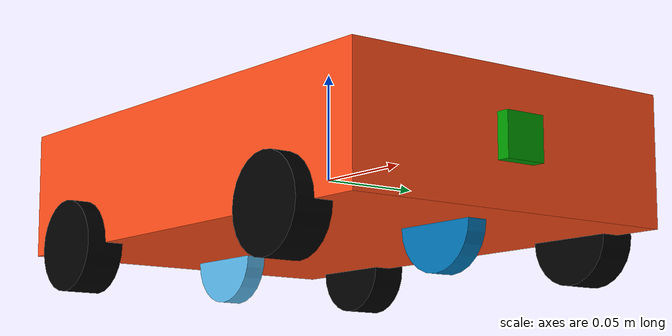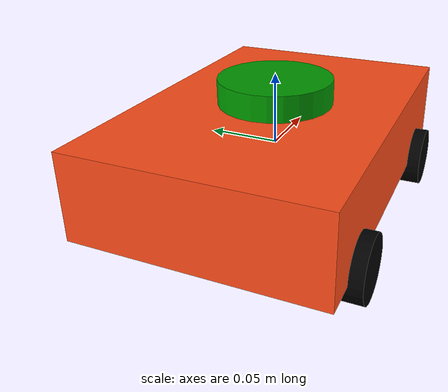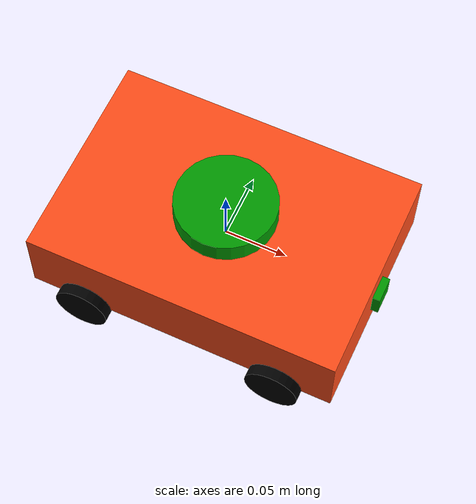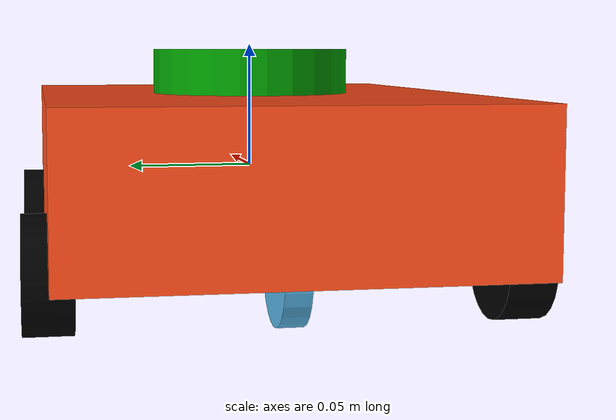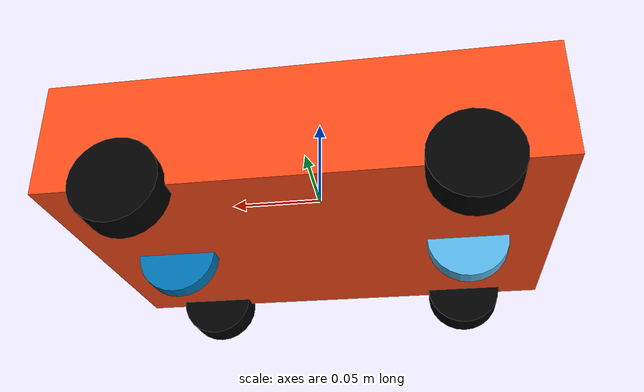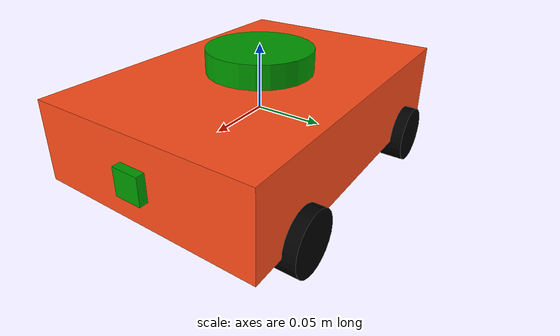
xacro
<?xml version="1.0"?>

<robot name="my_robot" xmlns:xacro="http://www.ros.org/wiki/xacro">

  <xacro:include filename="physical_robot_core.xacro" />

  <xacro:include filename="ros2_control_bic.xacro" />

  <xacro:include filename="lidar.xacro" />
  <xacro:include filename="depth_camera.xacro" />

</robot>

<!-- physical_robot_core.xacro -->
<robot xmlns:xacro="http://www.ros.org/wiki/xacro">

  <xacro:include filename="colors.xacro" />
  <xacro:include filename="inertial_macros.xacro" />

  <xacro:property name="PI" value="3.1415926535897931"/>
  <xacro:property name="base_mass" value="1" />
  <xacro:property name="base_width" value="0.17" />
  <xacro:property name="base_length" value="0.25" />
  <xacro:property name="base_height" value="0.06" />
  <xacro:property name="wheelbase" value="0.16" />
  <xacro:property name="wheel_mass" value="0.1" />
  <xacro:property name="wheel_len" value="0.018" />
  <xacro:property name="wheel_radius" value="0.0215" />

  <link name="base_link">
    <collision>
      <origin xyz="0 0 0" rpy="0 0 0"/>
      <geometry>
        <box size="${base_length} ${base_width} ${base_height}"/>
      </geometry>
    </collision>

    <visual>
      <origin xyz="0 0 0" rpy="0 0 0"/>
      <geometry>
        <box size="${base_length} ${base_width} ${base_height}"/>
      </geometry>
      <material name="orange"/>
    </visual>

    <inertial>
      <origin xyz="0 0 0" rpy="0 0 0"/>
      <mass value="${base_mass}"/>
        <inertia
          ixx="0.000270" ixy="0.0" ixz="0.0"
          iyy="0.000270" iyz="0.0"
          izz="0.000426"/>
      </inertial>
    </link>

    <!-- rear wheels -->

    <!-- virtual rear wheel -->

    <link name="virtual_rear_wheel">
      <visual>
        <origin xyz="0 0 0" rpy="${PI/2} 0 ${PI/2}"/>
        <geometry>
          <cylinder length="0.01" radius="${wheel_radius}"/>
        </geometry>
        <material name="invisible"/>
      </visual>
    </link>

    <joint name="virtual_rear_wheel_joint" type="continuous">
      <parent link="base_link"/>
      <child link="virtual_rear_wheel"/>
      <origin xyz="-${wheelbase/2} 0 -${base_height/2}" rpy="0 0 ${PI/2}"/>
      <axis xyz="1 0 0" rpy="0 0 0"/>
      <limit effort="100.0" velocity="100.0"/>
      <dynamics damping="0.2"/>
    </joint>

    <!-- rear right wheel -->

    <link name="rear_right_wheel">
      <collision>
        <origin xyz="0 0 0" rpy="${PI/2} 0 ${PI/2}"/>
        <geometry>
          <cylinder length="${wheel_len}" radius="${wheel_radius}"/>
        </geometry>
      </collision>

      <visual>
        <origin xyz="0 0 0" rpy="${PI/2} 0 ${PI/2}"/>
        <geometry>
          <cylinder length="${wheel_len}" radius="${wheel_radius}"/>
        </geometry>
        <material name="black"/>
      </visual>

      <inertial>
        <origin xyz="0 0 0" rpy="${PI/2} 0 ${PI/2}"/>
        <mass value="${wheel_mass}"/>
        <inertia
          ixx="0.000270" ixy="0.0" ixz="0.0"
          iyy="0.000270" iyz="0.0"
          izz="0.000426"/>
      </inertial>

    </link>

    <joint name="rear_right_wheel_joint" type="continuous">
      <parent link="base_link"/>
      <child link="rear_right_wheel"/>
      <origin xyz="-${wheelbase/2} ${base_width/2} -${base_height/2}" rpy="0 0 ${PI/2}"/>
      <axis xyz="1 0 0" rpy="0 0 0"/>
      <limit effort="100.0" velocity="100.0"/>
      <dynamics damping="0.2"/>
      <mimic joint="virtual_rear_wheel_joint" multiplier="1.0" offset="0.0"/>
    </joint>

    <!-- rear left wheel -->
    <link name="rear_left_wheel">
        <collision>
          <origin xyz="0 0 0" rpy="${PI/2} 0 ${PI/2}"/>
          <geometry>
            <cylinder length="${wheel_len}" radius="${wheel_radius}"/>
          </geometry>
        </collision>

        <visual>
          <origin xyz="0 0 0" rpy="${PI/2} 0 ${PI/2}"/>
          <geometry>
            <cylinder length="${wheel_len}" radius="${wheel_radius}"/>
          </geometry>
          <material name="black"/>
        </visual>

        <inertial>
          <origin xyz="0 0 0" rpy="${PI/2} 0 ${PI/2}"/>
          <mass value="${wheel_mass}"/>
          <inertia
            ixx="0.000270" ixy="0.0" ixz="0.0"
            iyy="0.000270" iyz="0.0"
            izz="0.000426"/>
        </inertial>

    </link>

    <joint name="rear_left_wheel_joint" type="continuous">
      <parent link="base_link" />
      <child link="rear_left_wheel" />
      <origin xyz="-${wheelbase/2} -${base_width/2} -${base_height/2}" rpy="0 0 ${PI/2}"/>
      <axis xyz="1 0 0" rpy="0 0 0" />
      <limit effort="100.0" velocity="100.0"/>
      <dynamics damping="0.2"/>
      <mimic joint="virtual_rear_wheel_joint" multiplier="1.0" offset="0.0"/>
    </joint>

    <!-- front wheels -->

    <!-- virtual front wheel -->

    <link name="virtual_front_wheel">
      <visual>
        <origin xyz="0 0 0" rpy="${PI/2} 0 ${PI/2}"/>
        <geometry>
          <cylinder length="0.01" radius="${wheel_radius}"/>
        </geometry>
        <material name="invisible"/>
      </visual>
    </link>

    <joint name="virtual_front_wheel_joint" type="revolute">
      <parent link="base_link"/>
      <child link="virtual_front_wheel"/>
      <origin xyz="${wheelbase/2} 0 -${base_height/2}" rpy="0 0 ${PI/2}"/>
      <axis xyz="0 0 1"/>
      <limit lower="-0.7853" upper="0.7853" effort="100.0" velocity="100.0"/>
      <dynamics damping="0.2"/>
    </joint>

    <!-- front right wheel -->

    <link name="front_right_wheel">

      <collision>
        <origin xyz="0 0 0" rpy="${PI/2} 0 ${PI/2}"/>
        <geometry>
          <cylinder length="${wheel_len}" radius="${wheel_radius}"/>
        </geometry>
      </collision>

      <visual>
        <origin xyz="0 0 0" rpy="${PI/2} 0 ${PI/2}"/>
        <geometry>
          <cylinder length="${wheel_len}" radius="${wheel_radius}"/>
        </geometry>
        <material name="black"/>
      </visual>

      <inertial>
        <origin xyz="0 0 0" rpy="${PI/2} 0 ${PI/2}"/>
        <mass value="${wheel_mass}"/>
        <inertia
          ixx="0.000270" ixy="0.0" ixz="0.0"
          iyy="0.000270" iyz="0.0"
          izz="0.000426"/>
      </inertial>
    </link>

    <joint name="front_right_wheel_joint" type="revolute">
      <parent link="base_link" />
      <child link="front_right_wheel" />
      <origin xyz="${wheelbase/2} ${base_width/2} -${base_height/2}" rpy="0 0 ${PI/2}"/>
      <axis xyz="0 0 1"/>
      <limit lower="-0.7853" upper="0.7853" effort="100.0" velocity="100.0"/>
      <dynamics damping="0.2"/>
      <mimic joint="virtual_front_wheel_joint" multiplier="1.0" offset="0.0"/>
    </joint>

    <link name="front_left_wheel">
      <collision>
        <origin xyz="0 0 0" rpy="${PI/2} 0 ${PI/2}"/>
        <geometry>
          <cylinder length="${wheel_len}" radius="${wheel_radius}"/>
        </geometry>
      </collision>

      <visual>
        <origin xyz="0 0 0" rpy="${PI/2} 0 ${PI/2}"/>
        <geometry>
          <cylinder length="${wheel_len}" radius="${wheel_radius}"/>
        </geometry>
        <material name="black"/>
      </visual>

      <inertial>
        <origin xyz="0 0 0" rpy="${PI/2} 0 ${PI/2}"/>
        <mass value="${wheel_mass}"/>
        <inertia
          ixx="0.000270" ixy="0.0" ixz="0.0"
          iyy="0.000270" iyz="0.0"
          izz="0.000426"/>
      </inertial>
    </link>

    <joint name="front_left_wheel_joint" type="revolute">
      <parent link="base_link" />
      <child link="front_left_wheel" />
      <origin xyz="${wheelbase/2} -${base_width/2} -${base_height/2}" rpy="0 0 ${PI/2}"/>
      <axis xyz="0 0 1"/>
      <limit lower="-0.7853" upper="0.7853" effort="100.0" velocity="100.0"/>
      <dynamics damping="0.2"/>
      <mimic joint="virtual_front_wheel_joint" multiplier="1.0" offset="0.0"/>
    </joint>

</robot>

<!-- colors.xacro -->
<robot xmlns:xacro="http://www.ros.org/wiki/xacro">

    <material name="grey">
        <color rgba="0.7 0.7 0.7 1"/>
    </material>

    <material name="green">
        <color rgba="0 0.6 0 1"/>
    </material>

    <material name="white">
        <color rgba="1 1 1 1"/>
    </material>

    <material name="black">
        <color rgba="0 0 0 1"/>
    </material>

    <material name="orange">
        <color rgba="1 0.3 0.1 1"/>
    </material>

</robot>

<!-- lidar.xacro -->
<robot xmlns:xacro="http://www.ros.org/wiki/xacro">

    <joint name="laser_joint" type="fixed">
        <parent link="base_link"/>
        <child link="laser_frame"/>
        <origin xyz="0 0 0.038" rpy="0 0 0"/>
    </joint>

    <link name="laser_frame">
        <collision>
            <geometry>
            <cylinder length="0.02" radius="0.04"/>
            </geometry>
        </collision>

        <visual>
            <geometry>
            <cylinder length="0.02" radius="0.04"/>
            </geometry>
            <material name="green"/>
        </visual>

        <xacro:inertial_cylinder mass="1.0" length="0.02" radius="0.04">
            <origin xyz="0 0 0" rpy="0 0 0"/>
        </xacro:inertial_cylinder>
    </link>

    <gazebo reference="laser_frame">
        <material>Gazebo/Green</material>
        <sensor name="laser" type="ray">
            <pose>0 0 0 0 0 0</pose>
            <visualize>false</visualize>
            <update_rate>10</update_rate>

            <ray>
                <scan>
                    <horizontal>
                        <samples>360</samples>
                        <resolution>1</resolution>
                        <min_angle>-3.14</min_angle>
                        <max_angle>3.14</max_angle>
                    </horizontal>
                </scan>

                <range>
                    <min>1</min>
                    <max>60</max>
                    <resolution>0.01</resolution>
                </range>
            </ray>

            <plugin name="laser_controller" filename="libgazebo_ros_ray_sensor.so">
                <ros>
                    <argument>~/out:=scan</argument>
                </ros>
                <output_type>sensor_msgs/LaserScan</output_type>
                <frame_name>laser_frame</frame_name>
            </plugin>
        </sensor>
    </gazebo>

</robot>

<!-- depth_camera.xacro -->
<robot xmlns:xacro="http://www.ros.org/wiki/xacro">

    <joint name="camera_joint" type="fixed">
        <parent link="base_link"/>
        <child link="camera_link"/>
        <origin xyz="0.128 0 0" rpy="0 0 0"/>
    </joint>

    <link name="camera_link">
        <visual>
            <geometry>
                <box size="0.006 0.02 0.02"/>
            </geometry>
            <material name="green"/>
        </visual>
    </link>

    <joint name="camera_optical_joint" type="fixed">
        <parent link="camera_link"/>
        <child link="camera_link_optical"/>
        <origin xyz="0 0 0" rpy="${-pi/2} 0 ${-pi/2}"/>
    </joint>

    <link name="camera_link_optical"></link>

    <gazebo reference="camera_link">
        <material>Gazebo/Green</material>

        <sensor name="camera" type="depth">
            <pose>0 0 0 0 0 0</pose>
            <visualize>false</visualize>
            <update_rate>10</update_rate>

            <camera>
                <horizontal_fov>1.204</horizontal_fov>
                <image>
                    <width>640</width>
                    <height>480</height>
                    <format>B8G8R8</format>
                </image>
                <clip>
                    <near>3</near>
                    <far>30.0</far>
                </clip>
            </camera>

            <plugin name="camera_controller" filename="libgazebo_ros_camera.so">
                <frame_name>camera_link_optical</frame_name>
                <min_depth>0.1</min_depth>
                <max_depth>100</max_depth>
            </plugin>
        </sensor>

    </gazebo>

</robot>
